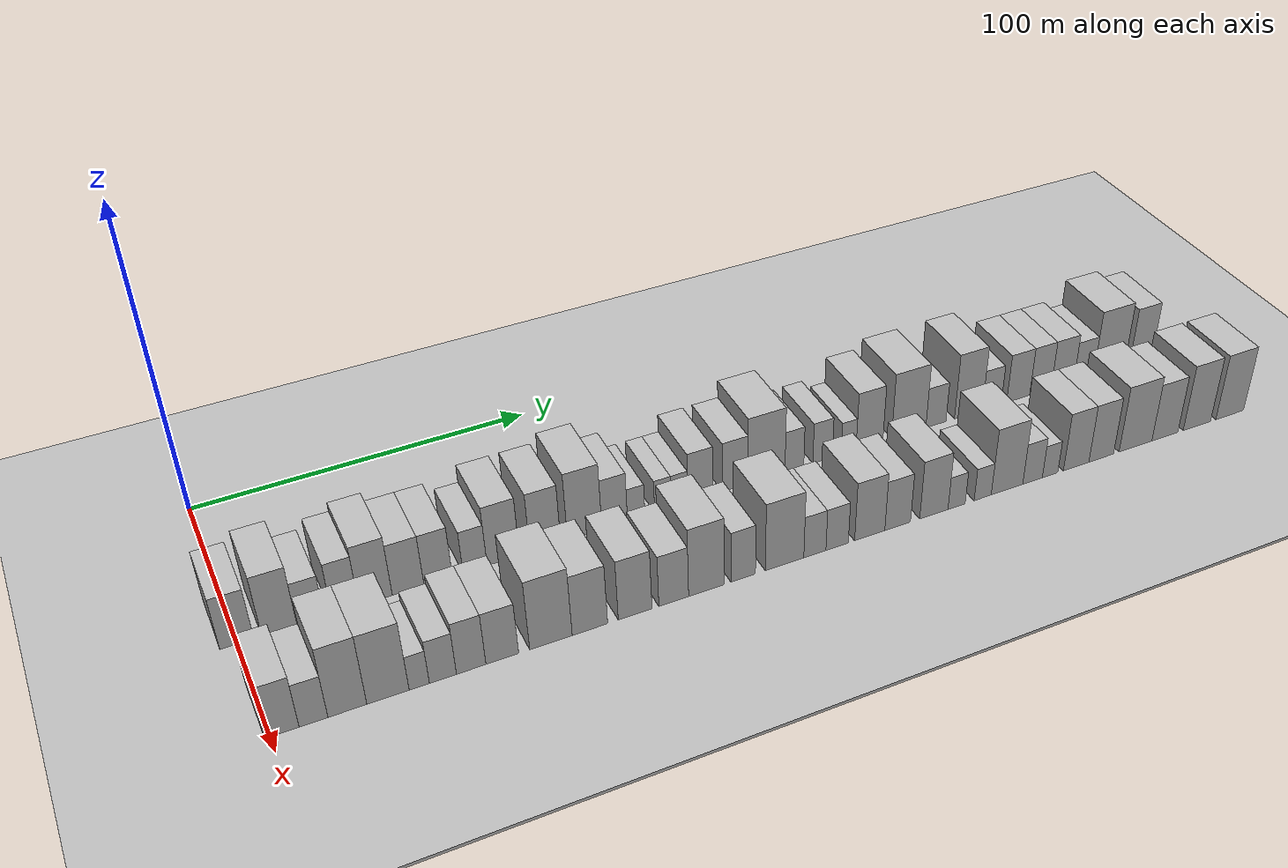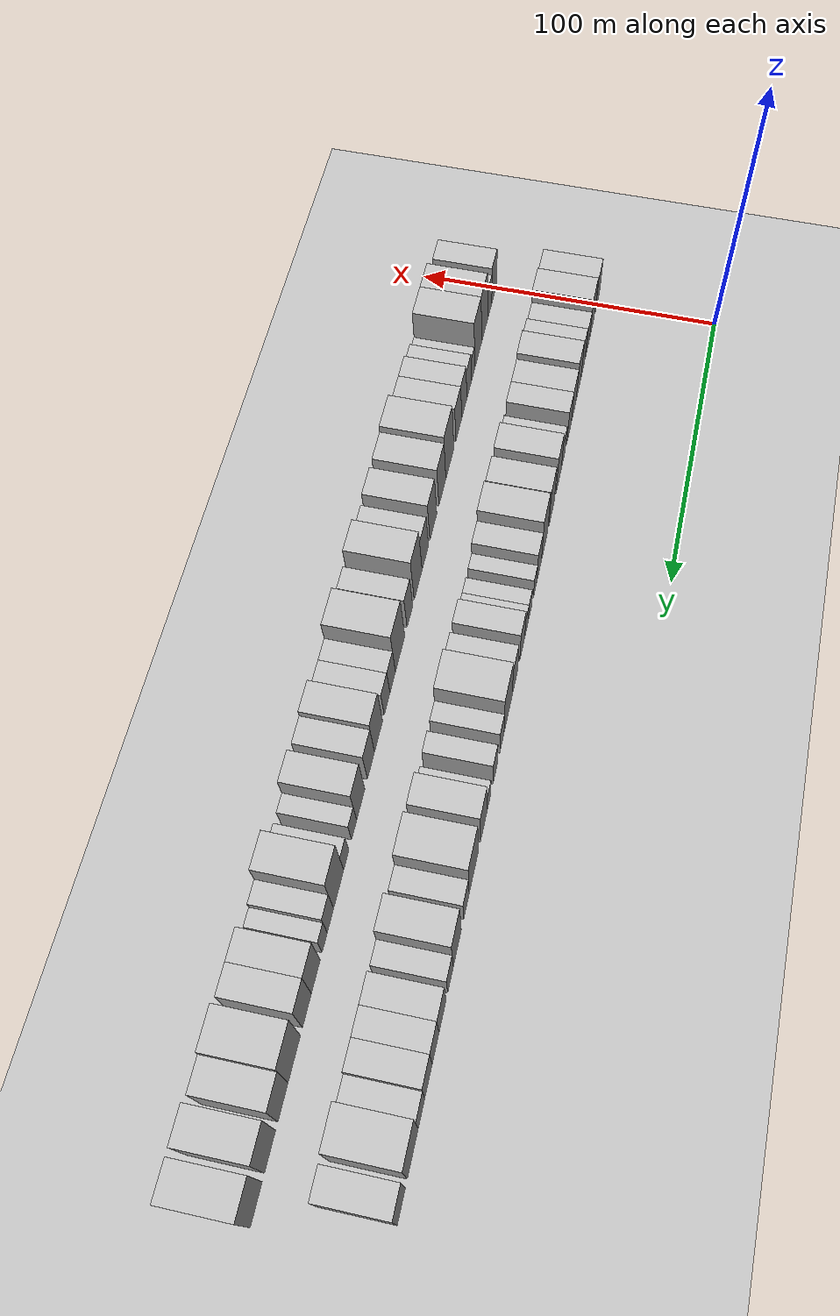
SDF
<sdf version="1.6">
 <world name="default">
  <include><name>ground_plane_1</name><uri>model://HANNAS_ground_plane</uri></include>
  <include>
   <name>ground_plane_2</name>
   <uri>model://HANNAS_ground_plane</uri>
   <pose>100 0 0  0 0 0</pose>
  </include>
  <model name="building_32">
   <static>1</static>
   <pose>50.0000 -0.1059 0 0.000000 0.000000 0.000000</pose>
   <link name="link">
    <pose>0 0 9.00 0 0 0</pose>
    <collision name="collision"><geometry><box><size>20.0000 8.8263 18.0000</size></box></geometry></collision>
    <visual name="visual">
     <cast_shadows>0</cast_shadows>
     <geometry><box><size>20.0000 8.8263 18.0000</size></box></geometry>
     <material>
      <script>
       <uri>model://HANNAS_wall/materials/scripts</uri>
       <uri>model://HANNAS_wall/materials/textures</uri>
       <name>vrc/HANNAS_wall</name>
      </script>
     </material>
    </visual>
   </link>
  </model>
  <model name="building_33">
   <static>1</static>
   <pose>50.0000 10.9382 0 0.000000 0.000000 0.000000</pose>
   <link name="link">
    <pose>0 0 10.50 0 0 0</pose>
    <collision name="collision"><geometry><box><size>20.0000 9.2619 21.0000</size></box></geometry></collision>
    <visual name="visual">
     <cast_shadows>0</cast_shadows>
     <geometry><box><size>20.0000 9.2619 21.0000</size></box></geometry>
     <material>
      <script>
       <uri>model://HANNAS_wall/materials/scripts</uri>
       <uri>model://HANNAS_wall/materials/textures</uri>
       <name>vrc/HANNAS_wall</name>
      </script>
     </material>
    </visual>
   </link>
  </model>
  <model name="building_34">
   <static>1</static>
   <pose>50.0000 19.1914 0 0.000000 0.000000 0.000000</pose>
   <link name="link">
    <pose>0 0 7.50 0 0 0</pose>
    <collision name="collision"><geometry><box><size>20.0000 7.2445 15.0000</size></box></geometry></collision>
    <visual name="visual">
     <cast_shadows>0</cast_shadows>
     <geometry><box><size>20.0000 7.2445 15.0000</size></box></geometry>
     <material>
      <script>
       <uri>model://HANNAS_wall/materials/scripts</uri>
       <uri>model://HANNAS_wall/materials/textures</uri>
       <name>vrc/HANNAS_wall</name>
      </script>
     </material>
    </visual>
   </link>
  </model>
  <model name="building_35">
   <static>1</static>
   <pose>50.0000 28.4466 0 0.000000 0.000000 0.000000</pose>
   <link name="link">
    <pose>0 0 9.00 0 0 0</pose>
    <collision name="collision"><geometry><box><size>20.0000 7.2659 18.0000</size></box></geometry></collision>
    <visual name="visual">
     <cast_shadows>0</cast_shadows>
     <geometry><box><size>20.0000 7.2659 18.0000</size></box></geometry>
     <material>
      <script>
       <uri>model://HANNAS_wall/materials/scripts</uri>
       <uri>model://HANNAS_wall/materials/textures</uri>
       <name>vrc/HANNAS_wall</name>
      </script>
     </material>
    </visual>
   </link>
  </model>
  <model name="building_36">
   <static>1</static>
   <pose>50.0000 36.6467 0 0.000000 0.000000 0.000000</pose>
   <link name="link">
    <pose>0 0 10.50 0 0 0</pose>
    <collision name="collision"><geometry><box><size>20.0000 9.1343 21.0000</size></box></geometry></collision>
    <visual name="visual">
     <cast_shadows>0</cast_shadows>
     <geometry><box><size>20.0000 9.1343 21.0000</size></box></geometry>
     <material>
      <script>
       <uri>model://HANNAS_wall/materials/scripts</uri>
       <uri>model://HANNAS_wall/materials/textures</uri>
       <name>vrc/HANNAS_wall</name>
      </script>
     </material>
    </visual>
   </link>
  </model>
  <model name="building_37">
   <static>1</static>
   <pose>50.0000 45.5861 0 0.000000 0.000000 0.000000</pose>
   <link name="link">
    <pose>0 0 9.00 0 0 0</pose>
    <collision name="collision"><geometry><box><size>20.0000 8.7445 18.0000</size></box></geometry></collision>
    <visual name="visual">
     <cast_shadows>0</cast_shadows>
     <geometry><box><size>20.0000 8.7445 18.0000</size></box></geometry>
     <material>
      <script>
       <uri>model://HANNAS_wall/materials/scripts</uri>
       <uri>model://HANNAS_wall/materials/textures</uri>
       <name>vrc/HANNAS_wall</name>
      </script>
     </material>
    </visual>
   </link>
  </model>
  <model name="building_38">
   <static>1</static>
   <pose>50.0000 53.9512 0 0.000000 0.000000 0.000000</pose>
   <link name="link">
    <pose>0 0 9.00 0 0 0</pose>
    <collision name="collision"><geometry><box><size>20.0000 7.9858 18.0000</size></box></geometry></collision>
    <visual name="visual">
     <cast_shadows>0</cast_shadows>
     <geometry><box><size>20.0000 7.9858 18.0000</size></box></geometry>
     <material>
      <script>
       <uri>model://HANNAS_wall/materials/scripts</uri>
       <uri>model://HANNAS_wall/materials/textures</uri>
       <name>vrc/HANNAS_wall</name>
      </script>
     </material>
    </visual>
   </link>
  </model>
  <model name="building_39">
   <static>1</static>
   <pose>50.0000 64.3658 0 0.000000 0.000000 0.000000</pose>
   <link name="link">
    <pose>0 0 7.50 0 0 0</pose>
    <collision name="collision"><geometry><box><size>20.0000 6.8434 15.0000</size></box></geometry></collision>
    <visual name="visual">
     <cast_shadows>0</cast_shadows>
     <geometry><box><size>20.0000 6.8434 15.0000</size></box></geometry>
     <material>
      <script>
       <uri>model://HANNAS_wall/materials/scripts</uri>
       <uri>model://HANNAS_wall/materials/textures</uri>
       <name>vrc/HANNAS_wall</name>
      </script>
     </material>
    </visual>
   </link>
  </model>
  <model name="building_40">
   <static>1</static>
   <pose>50.0000 72.4730 0 0.000000 0.000000 0.000000</pose>
   <link name="link">
    <pose>0 0 10.50 0 0 0</pose>
    <collision name="collision"><geometry><box><size>20.0000 9.3710 21.0000</size></box></geometry></collision>
    <visual name="visual">
     <cast_shadows>0</cast_shadows>
     <geometry><box><size>20.0000 9.3710 21.0000</size></box></geometry>
     <material>
      <script>
       <uri>model://HANNAS_wall/materials/scripts</uri>
       <uri>model://HANNAS_wall/materials/textures</uri>
       <name>vrc/HANNAS_wall</name>
      </script>
     </material>
    </visual>
   </link>
  </model>
  <model name="building_41">
   <static>1</static>
   <pose>50.0000 84.6724 0 0.000000 0.000000 0.000000</pose>
   <link name="link">
    <pose>0 0 10.50 0 0 0</pose>
    <collision name="collision"><geometry><box><size>20.0000 9.0277 21.0000</size></box></geometry></collision>
    <visual name="visual">
     <cast_shadows>0</cast_shadows>
     <geometry><box><size>20.0000 9.0277 21.0000</size></box></geometry>
     <material>
      <script>
       <uri>model://HANNAS_wall/materials/scripts</uri>
       <uri>model://HANNAS_wall/materials/textures</uri>
       <name>vrc/HANNAS_wall</name>
      </script>
     </material>
    </visual>
   </link>
  </model>
  <model name="building_42">
   <static>1</static>
   <pose>50.0000 96.3206 0 0.000000 0.000000 0.000000</pose>
   <link name="link">
    <pose>0 0 12.00 0 0 0</pose>
    <collision name="collision"><geometry><box><size>20.0000 10.2688 24.0000</size></box></geometry></collision>
    <visual name="visual">
     <cast_shadows>0</cast_shadows>
     <geometry><box><size>20.0000 10.2688 24.0000</size></box></geometry>
     <material>
      <script>
       <uri>model://HANNAS_wall/materials/scripts</uri>
       <uri>model://HANNAS_wall/materials/textures</uri>
       <name>vrc/HANNAS_wall</name>
      </script>
     </material>
    </visual>
   </link>
  </model>
  <model name="building_43">
   <static>1</static>
   <pose>50.0000 105.3355 0 0.000000 0.000000 0.000000</pose>
   <link name="link">
    <pose>0 0 9.00 0 0 0</pose>
    <collision name="collision"><geometry><box><size>20.0000 7.7611 18.0000</size></box></geometry></collision>
    <visual name="visual">
     <cast_shadows>0</cast_shadows>
     <geometry><box><size>20.0000 7.7611 18.0000</size></box></geometry>
     <material>
      <script>
       <uri>model://HANNAS_wall/materials/scripts</uri>
       <uri>model://HANNAS_wall/materials/textures</uri>
       <name>vrc/HANNAS_wall</name>
      </script>
     </material>
    </visual>
   </link>
  </model>
  <model name="building_44">
   <static>1</static>
   <pose>50.0000 111.8671 0 0.000000 0.000000 0.000000</pose>
   <link name="link">
    <pose>0 0 6.00 0 0 0</pose>
    <collision name="collision"><geometry><box><size>20.0000 5.3020 12.0000</size></box></geometry></collision>
    <visual name="visual">
     <cast_shadows>0</cast_shadows>
     <geometry><box><size>20.0000 5.3020 12.0000</size></box></geometry>
     <material>
      <script>
       <uri>model://HANNAS_wall/materials/scripts</uri>
       <uri>model://HANNAS_wall/materials/textures</uri>
       <name>vrc/HANNAS_wall</name>
      </script>
     </material>
    </visual>
   </link>
  </model>
  <model name="building_45">
   <static>1</static>
   <pose>50.0000 120.0955 0 0.000000 0.000000 0.000000</pose>
   <link name="link">
    <pose>0 0 6.00 0 0 0</pose>
    <collision name="collision"><geometry><box><size>20.0000 5.1548 12.0000</size></box></geometry></collision>
    <visual name="visual">
     <cast_shadows>0</cast_shadows>
     <geometry><box><size>20.0000 5.1548 12.0000</size></box></geometry>
     <material>
      <script>
       <uri>model://HANNAS_wall/materials/scripts</uri>
       <uri>model://HANNAS_wall/materials/textures</uri>
       <name>vrc/HANNAS_wall</name>
      </script>
     </material>
    </visual>
   </link>
  </model>
  <model name="building_46">
   <static>1</static>
   <pose>50.0000 125.2434 0 0.000000 0.000000 0.000000</pose>
   <link name="link">
    <pose>0 0 6.00 0 0 0</pose>
    <collision name="collision"><geometry><box><size>20.0000 5.1410 12.0000</size></box></geometry></collision>
    <visual name="visual">
     <cast_shadows>0</cast_shadows>
     <geometry><box><size>20.0000 5.1410 12.0000</size></box></geometry>
     <material>
      <script>
       <uri>model://HANNAS_wall/materials/scripts</uri>
       <uri>model://HANNAS_wall/materials/textures</uri>
       <name>vrc/HANNAS_wall</name>
      </script>
     </material>
    </visual>
   </link>
  </model>
  <model name="building_47">
   <static>1</static>
   <pose>50.0000 131.7427 0 0.000000 0.000000 0.000000</pose>
   <link name="link">
    <pose>0 0 9.00 0 0 0</pose>
    <collision name="collision"><geometry><box><size>20.0000 7.8575 18.0000</size></box></geometry></collision>
    <visual name="visual">
     <cast_shadows>0</cast_shadows>
     <geometry><box><size>20.0000 7.8575 18.0000</size></box></geometry>
     <material>
      <script>
       <uri>model://HANNAS_wall/materials/scripts</uri>
       <uri>model://HANNAS_wall/materials/textures</uri>
       <name>vrc/HANNAS_wall</name>
      </script>
     </material>
    </visual>
   </link>
  </model>
  <model name="building_48">
   <static>1</static>
   <pose>50.0000 142.7689 0 0.000000 0.000000 0.000000</pose>
   <link name="link">
    <pose>0 0 9.00 0 0 0</pose>
    <collision name="collision"><geometry><box><size>20.0000 8.1947 18.0000</size></box></geometry></collision>
    <visual name="visual">
     <cast_shadows>0</cast_shadows>
     <geometry><box><size>20.0000 8.1947 18.0000</size></box></geometry>
     <material>
      <script>
       <uri>model://HANNAS_wall/materials/scripts</uri>
       <uri>model://HANNAS_wall/materials/textures</uri>
       <name>vrc/HANNAS_wall</name>
      </script>
     </material>
    </visual>
   </link>
  </model>
  <model name="building_49">
   <static>1</static>
   <pose>50.0000 152.8509 0 0.000000 0.000000 0.000000</pose>
   <link name="link">
    <pose>0 0 12.00 0 0 0</pose>
    <collision name="collision"><geometry><box><size>20.0000 11.9694 24.0000</size></box></geometry></collision>
    <visual name="visual">
     <cast_shadows>0</cast_shadows>
     <geometry><box><size>20.0000 11.9694 24.0000</size></box></geometry>
     <material>
      <script>
       <uri>model://HANNAS_wall/materials/scripts</uri>
       <uri>model://HANNAS_wall/materials/textures</uri>
       <name>vrc/HANNAS_wall</name>
      </script>
     </material>
    </visual>
   </link>
  </model>
  <model name="building_50">
   <static>1</static>
   <pose>50.0000 161.9221 0 0.000000 0.000000 0.000000</pose>
   <link name="link">
    <pose>0 0 7.50 0 0 0</pose>
    <collision name="collision"><geometry><box><size>20.0000 6.1730 15.0000</size></box></geometry></collision>
    <visual name="visual">
     <cast_shadows>0</cast_shadows>
     <geometry><box><size>20.0000 6.1730 15.0000</size></box></geometry>
     <material>
      <script>
       <uri>model://HANNAS_wall/materials/scripts</uri>
       <uri>model://HANNAS_wall/materials/textures</uri>
       <name>vrc/HANNAS_wall</name>
      </script>
     </material>
    </visual>
   </link>
  </model>
  <model name="building_51">
   <static>1</static>
   <pose>50.0000 171.2372 0 0.000000 0.000000 0.000000</pose>
   <link name="link">
    <pose>0 0 7.50 0 0 0</pose>
    <collision name="collision"><geometry><box><size>20.0000 6.4571 15.0000</size></box></geometry></collision>
    <visual name="visual">
     <cast_shadows>0</cast_shadows>
     <geometry><box><size>20.0000 6.4571 15.0000</size></box></geometry>
     <material>
      <script>
       <uri>model://HANNAS_wall/materials/scripts</uri>
       <uri>model://HANNAS_wall/materials/textures</uri>
       <name>vrc/HANNAS_wall</name>
      </script>
     </material>
    </visual>
   </link>
  </model>
  <model name="building_52">
   <static>1</static>
   <pose>50.0000 179.9599 0 0.000000 0.000000 0.000000</pose>
   <link name="link">
    <pose>0 0 6.00 0 0 0</pose>
    <collision name="collision"><geometry><box><size>20.0000 4.9883 12.0000</size></box></geometry></collision>
    <visual name="visual">
     <cast_shadows>0</cast_shadows>
     <geometry><box><size>20.0000 4.9883 12.0000</size></box></geometry>
     <material>
      <script>
       <uri>model://HANNAS_wall/materials/scripts</uri>
       <uri>model://HANNAS_wall/materials/textures</uri>
       <name>vrc/HANNAS_wall</name>
      </script>
     </material>
    </visual>
   </link>
  </model>
  <model name="building_53">
   <static>1</static>
   <pose>50.0000 187.0198 0 0.000000 0.000000 0.000000</pose>
   <link name="link">
    <pose>0 0 10.50 0 0 0</pose>
    <collision name="collision"><geometry><box><size>20.0000 9.1315 21.0000</size></box></geometry></collision>
    <visual name="visual">
     <cast_shadows>0</cast_shadows>
     <geometry><box><size>20.0000 9.1315 21.0000</size></box></geometry>
     <material>
      <script>
       <uri>model://HANNAS_wall/materials/scripts</uri>
       <uri>model://HANNAS_wall/materials/textures</uri>
       <name>vrc/HANNAS_wall</name>
      </script>
     </material>
    </visual>
   </link>
  </model>
  <model name="building_54">
   <static>1</static>
   <pose>50.0000 200.5181 0 0.000000 0.000000 0.000000</pose>
   <link name="link">
    <pose>0 0 12.00 0 0 0</pose>
    <collision name="collision"><geometry><box><size>20.0000 11.8651 24.0000</size></box></geometry></collision>
    <visual name="visual">
     <cast_shadows>0</cast_shadows>
     <geometry><box><size>20.0000 11.8651 24.0000</size></box></geometry>
     <material>
      <script>
       <uri>model://HANNAS_wall/materials/scripts</uri>
       <uri>model://HANNAS_wall/materials/textures</uri>
       <name>vrc/HANNAS_wall</name>
      </script>
     </material>
    </visual>
   </link>
  </model>
  <model name="building_55">
   <static>1</static>
   <pose>50.0000 209.9860 0 0.000000 0.000000 0.000000</pose>
   <link name="link">
    <pose>0 0 7.50 0 0 0</pose>
    <collision name="collision"><geometry><box><size>20.0000 7.0707 15.0000</size></box></geometry></collision>
    <visual name="visual">
     <cast_shadows>0</cast_shadows>
     <geometry><box><size>20.0000 7.0707 15.0000</size></box></geometry>
     <material>
      <script>
       <uri>model://HANNAS_wall/materials/scripts</uri>
       <uri>model://HANNAS_wall/materials/textures</uri>
       <name>vrc/HANNAS_wall</name>
      </script>
     </material>
    </visual>
   </link>
  </model>
  <model name="building_56">
   <static>1</static>
   <pose>50.0000 221.4651 0 0.000000 0.000000 0.000000</pose>
   <link name="link">
    <pose>0 0 12.00 0 0 0</pose>
    <collision name="collision"><geometry><box><size>20.0000 9.8875 24.0000</size></box></geometry></collision>
    <visual name="visual">
     <cast_shadows>0</cast_shadows>
     <geometry><box><size>20.0000 9.8875 24.0000</size></box></geometry>
     <material>
      <script>
       <uri>model://HANNAS_wall/materials/scripts</uri>
       <uri>model://HANNAS_wall/materials/textures</uri>
       <name>vrc/HANNAS_wall</name>
      </script>
     </material>
    </visual>
   </link>
  </model>
  <model name="building_57">
   <static>1</static>
   <pose>50.0000 229.8270 0 0.000000 0.000000 0.000000</pose>
   <link name="link">
    <pose>0 0 7.50 0 0 0</pose>
    <collision name="collision"><geometry><box><size>20.0000 6.8363 15.0000</size></box></geometry></collision>
    <visual name="visual">
     <cast_shadows>0</cast_shadows>
     <geometry><box><size>20.0000 6.8363 15.0000</size></box></geometry>
     <material>
      <script>
       <uri>model://HANNAS_wall/materials/scripts</uri>
       <uri>model://HANNAS_wall/materials/textures</uri>
       <name>vrc/HANNAS_wall</name>
      </script>
     </material>
    </visual>
   </link>
  </model>
  <model name="building_58">
   <static>1</static>
   <pose>50.0000 239.4545 0 0.000000 0.000000 0.000000</pose>
   <link name="link">
    <pose>0 0 9.00 0 0 0</pose>
    <collision name="collision"><geometry><box><size>20.0000 8.4186 18.0000</size></box></geometry></collision>
    <visual name="visual">
     <cast_shadows>0</cast_shadows>
     <geometry><box><size>20.0000 8.4186 18.0000</size></box></geometry>
     <material>
      <script>
       <uri>model://HANNAS_wall/materials/scripts</uri>
       <uri>model://HANNAS_wall/materials/textures</uri>
       <name>vrc/HANNAS_wall</name>
      </script>
     </material>
    </visual>
   </link>
  </model>
  <model name="building_59">
   <static>1</static>
   <pose>50.0000 247.6351 0 0.000000 0.000000 0.000000</pose>
   <link name="link">
    <pose>0 0 9.00 0 0 0</pose>
    <collision name="collision"><geometry><box><size>20.0000 7.9426 18.0000</size></box></geometry></collision>
    <visual name="visual">
     <cast_shadows>0</cast_shadows>
     <geometry><box><size>20.0000 7.9426 18.0000</size></box></geometry>
     <material>
      <script>
       <uri>model://HANNAS_wall/materials/scripts</uri>
       <uri>model://HANNAS_wall/materials/textures</uri>
       <name>vrc/HANNAS_wall</name>
      </script>
     </material>
    </visual>
   </link>
  </model>
  <model name="building_60">
   <static>1</static>
   <pose>50.0000 255.8206 0 0.000000 0.000000 0.000000</pose>
   <link name="link">
    <pose>0 0 9.00 0 0 0</pose>
    <collision name="collision"><geometry><box><size>20.0000 8.4284 18.0000</size></box></geometry></collision>
    <visual name="visual">
     <cast_shadows>0</cast_shadows>
     <geometry><box><size>20.0000 8.4284 18.0000</size></box></geometry>
     <material>
      <script>
       <uri>model://HANNAS_wall/materials/scripts</uri>
       <uri>model://HANNAS_wall/materials/textures</uri>
       <name>vrc/HANNAS_wall</name>
      </script>
     </material>
    </visual>
   </link>
  </model>
  <model name="building_61">
   <static>1</static>
   <pose>50.0000 263.7699 0 0.000000 0.000000 0.000000</pose>
   <link name="link">
    <pose>0 0 7.50 0 0 0</pose>
    <collision name="collision"><geometry><box><size>20.0000 7.4702 15.0000</size></box></geometry></collision>
    <visual name="visual">
     <cast_shadows>0</cast_shadows>
     <geometry><box><size>20.0000 7.4702 15.0000</size></box></geometry>
     <material>
      <script>
       <uri>model://HANNAS_wall/materials/scripts</uri>
       <uri>model://HANNAS_wall/materials/textures</uri>
       <name>vrc/HANNAS_wall</name>
      </script>
     </material>
    </visual>
   </link>
  </model>
  <model name="building_62">
   <static>1</static>
   <pose>50.0000 273.4328 0 0.000000 0.000000 0.000000</pose>
   <link name="link">
    <pose>0 0 12.00 0 0 0</pose>
    <collision name="collision"><geometry><box><size>20.0000 11.8557 24.0000</size></box></geometry></collision>
    <visual name="visual">
     <cast_shadows>0</cast_shadows>
     <geometry><box><size>20.0000 11.8557 24.0000</size></box></geometry>
     <material>
      <script>
       <uri>model://HANNAS_wall/materials/scripts</uri>
       <uri>model://HANNAS_wall/materials/textures</uri>
       <name>vrc/HANNAS_wall</name>
      </script>
     </material>
    </visual>
   </link>
  </model>
  <model name="building_63">
   <static>1</static>
   <pose>50.0000 285.7051 0 0.000000 0.000000 0.000000</pose>
   <link name="link">
    <pose>0 0 10.50 0 0 0</pose>
    <collision name="collision"><geometry><box><size>20.0000 8.6888 21.0000</size></box></geometry></collision>
    <visual name="visual">
     <cast_shadows>0</cast_shadows>
     <geometry><box><size>20.0000 8.6888 21.0000</size></box></geometry>
     <material>
      <script>
       <uri>model://HANNAS_wall/materials/scripts</uri>
       <uri>model://HANNAS_wall/materials/textures</uri>
       <name>vrc/HANNAS_wall</name>
      </script>
     </material>
    </visual>
   </link>
  </model>
  <model name="building_96">
   <static>1</static>
   <pose>85.0000 2.8627 0 0.000000 0.000000 0.000000</pose>
   <link name="link">
    <pose>0 0 9.00 0 0 0</pose>
    <collision name="collision"><geometry><box><size>20.0000 8.4858 18.0000</size></box></geometry></collision>
    <visual name="visual">
     <cast_shadows>0</cast_shadows>
     <geometry><box><size>20.0000 8.4858 18.0000</size></box></geometry>
     <material>
      <script>
       <uri>model://HANNAS_wall/materials/scripts</uri>
       <uri>model://HANNAS_wall/materials/textures</uri>
       <name>vrc/HANNAS_wall</name>
      </script>
     </material>
    </visual>
   </link>
  </model>
  <model name="building_97">
   <static>1</static>
   <pose>85.0000 10.6916 0 0.000000 0.000000 0.000000</pose>
   <link name="link">
    <pose>0 0 7.50 0 0 0</pose>
    <collision name="collision"><geometry><box><size>20.0000 7.1720 15.0000</size></box></geometry></collision>
    <visual name="visual">
     <cast_shadows>0</cast_shadows>
     <geometry><box><size>20.0000 7.1720 15.0000</size></box></geometry>
     <material>
      <script>
       <uri>model://HANNAS_wall/materials/scripts</uri>
       <uri>model://HANNAS_wall/materials/textures</uri>
       <name>vrc/HANNAS_wall</name>
      </script>
     </material>
    </visual>
   </link>
  </model>
  <model name="building_98">
   <static>1</static>
   <pose>85.0000 19.1859 0 0.000000 0.000000 0.000000</pose>
   <link name="link">
    <pose>0 0 12.00 0 0 0</pose>
    <collision name="collision"><geometry><box><size>20.0000 9.8165 24.0000</size></box></geometry></collision>
    <visual name="visual">
     <cast_shadows>0</cast_shadows>
     <geometry><box><size>20.0000 9.8165 24.0000</size></box></geometry>
     <material>
      <script>
       <uri>model://HANNAS_wall/materials/scripts</uri>
       <uri>model://HANNAS_wall/materials/textures</uri>
       <name>vrc/HANNAS_wall</name>
      </script>
     </material>
    </visual>
   </link>
  </model>
  <model name="building_99">
   <static>1</static>
   <pose>85.0000 29.5244 0 0.000000 0.000000 0.000000</pose>
   <link name="link">
    <pose>0 0 12.00 0 0 0</pose>
    <collision name="collision"><geometry><box><size>20.0000 10.8606 24.0000</size></box></geometry></collision>
    <visual name="visual">
     <cast_shadows>0</cast_shadows>
     <geometry><box><size>20.0000 10.8606 24.0000</size></box></geometry>
     <material>
      <script>
       <uri>model://HANNAS_wall/materials/scripts</uri>
       <uri>model://HANNAS_wall/materials/textures</uri>
       <name>vrc/HANNAS_wall</name>
      </script>
     </material>
    </visual>
   </link>
  </model>
  <model name="building_100">
   <static>1</static>
   <pose>85.0000 37.5834 0 0.000000 0.000000 0.000000</pose>
   <link name="link">
    <pose>0 0 6.00 0 0 0</pose>
    <collision name="collision"><geometry><box><size>20.0000 5.2576 12.0000</size></box></geometry></collision>
    <visual name="visual">
     <cast_shadows>0</cast_shadows>
     <geometry><box><size>20.0000 5.2576 12.0000</size></box></geometry>
     <material>
      <script>
       <uri>model://HANNAS_wall/materials/scripts</uri>
       <uri>model://HANNAS_wall/materials/textures</uri>
       <name>vrc/HANNAS_wall</name>
      </script>
     </material>
    </visual>
   </link>
  </model>
  <model name="building_101">
   <static>1</static>
   <pose>85.0000 43.7744 0 0.000000 0.000000 0.000000</pose>
   <link name="link">
    <pose>0 0 7.50 0 0 0</pose>
    <collision name="collision"><geometry><box><size>20.0000 7.1243 15.0000</size></box></geometry></collision>
    <visual name="visual">
     <cast_shadows>0</cast_shadows>
     <geometry><box><size>20.0000 7.1243 15.0000</size></box></geometry>
     <material>
      <script>
       <uri>model://HANNAS_wall/materials/scripts</uri>
       <uri>model://HANNAS_wall/materials/textures</uri>
       <name>vrc/HANNAS_wall</name>
      </script>
     </material>
    </visual>
   </link>
  </model>
  <model name="building_102">
   <static>1</static>
   <pose>85.0000 51.2470 0 0.000000 0.000000 0.000000</pose>
   <link name="link">
    <pose>0 0 9.00 0 0 0</pose>
    <collision name="collision"><geometry><box><size>20.0000 7.8208 18.0000</size></box></geometry></collision>
    <visual name="visual">
     <cast_shadows>0</cast_shadows>
     <geometry><box><size>20.0000 7.8208 18.0000</size></box></geometry>
     <material>
      <script>
       <uri>model://HANNAS_wall/materials/scripts</uri>
       <uri>model://HANNAS_wall/materials/textures</uri>
       <name>vrc/HANNAS_wall</name>
      </script>
     </material>
    </visual>
   </link>
  </model>
  <model name="building_103">
   <static>1</static>
   <pose>85.0000 59.5726 0 0.000000 0.000000 0.000000</pose>
   <link name="link">
    <pose>0 0 9.00 0 0 0</pose>
    <collision name="collision"><geometry><box><size>20.0000 8.8305 18.0000</size></box></geometry></collision>
    <visual name="visual">
     <cast_shadows>0</cast_shadows>
     <geometry><box><size>20.0000 8.8305 18.0000</size></box></geometry>
     <material>
      <script>
       <uri>model://HANNAS_wall/materials/scripts</uri>
       <uri>model://HANNAS_wall/materials/textures</uri>
       <name>vrc/HANNAS_wall</name>
      </script>
     </material>
    </visual>
   </link>
  </model>
  <model name="building_104">
   <static>1</static>
   <pose>85.0000 72.8417 0 0.000000 0.000000 0.000000</pose>
   <link name="link">
    <pose>0 0 12.00 0 0 0</pose>
    <collision name="collision"><geometry><box><size>20.0000 11.7076 24.0000</size></box></geometry></collision>
    <visual name="visual">
     <cast_shadows>0</cast_shadows>
     <geometry><box><size>20.0000 11.7076 24.0000</size></box></geometry>
     <material>
      <script>
       <uri>model://HANNAS_wall/materials/scripts</uri>
       <uri>model://HANNAS_wall/materials/textures</uri>
       <name>vrc/HANNAS_wall</name>
      </script>
     </material>
    </visual>
   </link>
  </model>
  <model name="building_105">
   <static>1</static>
   <pose>85.0000 83.6603 0 0.000000 0.000000 0.000000</pose>
   <link name="link">
    <pose>0 0 10.50 0 0 0</pose>
    <collision name="collision"><geometry><box><size>20.0000 9.9297 21.0000</size></box></geometry></collision>
    <visual name="visual">
     <cast_shadows>0</cast_shadows>
     <geometry><box><size>20.0000 9.9297 21.0000</size></box></geometry>
     <material>
      <script>
       <uri>model://HANNAS_wall/materials/scripts</uri>
       <uri>model://HANNAS_wall/materials/textures</uri>
       <name>vrc/HANNAS_wall</name>
      </script>
     </material>
    </visual>
   </link>
  </model>
  <model name="building_106">
   <static>1</static>
   <pose>85.0000 96.4354 0 0.000000 0.000000 0.000000</pose>
   <link name="link">
    <pose>0 0 10.50 0 0 0</pose>
    <collision name="collision"><geometry><box><size>20.0000 9.6205 21.0000</size></box></geometry></collision>
    <visual name="visual">
     <cast_shadows>0</cast_shadows>
     <geometry><box><size>20.0000 9.6205 21.0000</size></box></geometry>
     <material>
      <script>
       <uri>model://HANNAS_wall/materials/scripts</uri>
       <uri>model://HANNAS_wall/materials/textures</uri>
       <name>vrc/HANNAS_wall</name>
      </script>
     </material>
    </visual>
   </link>
  </model>
  <model name="building_107">
   <static>1</static>
   <pose>85.0000 107.5738 0 0.000000 0.000000 0.000000</pose>
   <link name="link">
    <pose>0 0 9.00 0 0 0</pose>
    <collision name="collision"><geometry><box><size>20.0000 8.6563 18.0000</size></box></geometry></collision>
    <visual name="visual">
     <cast_shadows>0</cast_shadows>
     <geometry><box><size>20.0000 8.6563 18.0000</size></box></geometry>
     <material>
      <script>
       <uri>model://HANNAS_wall/materials/scripts</uri>
       <uri>model://HANNAS_wall/materials/textures</uri>
       <name>vrc/HANNAS_wall</name>
      </script>
     </material>
    </visual>
   </link>
  </model>
  <model name="building_108">
   <static>1</static>
   <pose>85.0000 117.1630 0 0.000000 0.000000 0.000000</pose>
   <link name="link">
    <pose>0 0 12.00 0 0 0</pose>
    <collision name="collision"><geometry><box><size>20.0000 10.5221 24.0000</size></box></geometry></collision>
    <visual name="visual">
     <cast_shadows>0</cast_shadows>
     <geometry><box><size>20.0000 10.5221 24.0000</size></box></geometry>
     <material>
      <script>
       <uri>model://HANNAS_wall/materials/scripts</uri>
       <uri>model://HANNAS_wall/materials/textures</uri>
       <name>vrc/HANNAS_wall</name>
      </script>
     </material>
    </visual>
   </link>
  </model>
  <model name="building_109">
   <static>1</static>
   <pose>85.0000 128.0937 0 0.000000 0.000000 0.000000</pose>
   <link name="link">
    <pose>0 0 9.00 0 0 0</pose>
    <collision name="collision"><geometry><box><size>20.0000 7.3392 18.0000</size></box></geometry></collision>
    <visual name="visual">
     <cast_shadows>0</cast_shadows>
     <geometry><box><size>20.0000 7.3392 18.0000</size></box></geometry>
     <material>
      <script>
       <uri>model://HANNAS_wall/materials/scripts</uri>
       <uri>model://HANNAS_wall/materials/textures</uri>
       <name>vrc/HANNAS_wall</name>
      </script>
     </material>
    </visual>
   </link>
  </model>
  <model name="building_110">
   <static>1</static>
   <pose>85.0000 140.6455 0 0.000000 0.000000 0.000000</pose>
   <link name="link">
    <pose>0 0 12.00 0 0 0</pose>
    <collision name="collision"><geometry><box><size>20.0000 11.7644 24.0000</size></box></geometry></collision>
    <visual name="visual">
     <cast_shadows>0</cast_shadows>
     <geometry><box><size>20.0000 11.7644 24.0000</size></box></geometry>
     <material>
      <script>
       <uri>model://HANNAS_wall/materials/scripts</uri>
       <uri>model://HANNAS_wall/materials/textures</uri>
       <name>vrc/HANNAS_wall</name>
      </script>
     </material>
    </visual>
   </link>
  </model>
  <model name="building_111">
   <static>1</static>
   <pose>85.0000 149.9603 0 0.000000 0.000000 0.000000</pose>
   <link name="link">
    <pose>0 0 7.50 0 0 0</pose>
    <collision name="collision"><geometry><box><size>20.0000 6.8652 15.0000</size></box></geometry></collision>
    <visual name="visual">
     <cast_shadows>0</cast_shadows>
     <geometry><box><size>20.0000 6.8652 15.0000</size></box></geometry>
     <material>
      <script>
       <uri>model://HANNAS_wall/materials/scripts</uri>
       <uri>model://HANNAS_wall/materials/textures</uri>
       <name>vrc/HANNAS_wall</name>
      </script>
     </material>
    </visual>
   </link>
  </model>
  <model name="building_112">
   <static>1</static>
   <pose>85.0000 156.9005 0 0.000000 0.000000 0.000000</pose>
   <link name="link">
    <pose>0 0 7.50 0 0 0</pose>
    <collision name="collision"><geometry><box><size>20.0000 7.0152 15.0000</size></box></geometry></collision>
    <visual name="visual">
     <cast_shadows>0</cast_shadows>
     <geometry><box><size>20.0000 7.0152 15.0000</size></box></geometry>
     <material>
      <script>
       <uri>model://HANNAS_wall/materials/scripts</uri>
       <uri>model://HANNAS_wall/materials/textures</uri>
       <name>vrc/HANNAS_wall</name>
      </script>
     </material>
    </visual>
   </link>
  </model>
  <model name="building_113">
   <static>1</static>
   <pose>85.0000 167.2164 0 0.000000 0.000000 0.000000</pose>
   <link name="link">
    <pose>0 0 10.50 0 0 0</pose>
    <collision name="collision"><geometry><box><size>20.0000 9.6166 21.0000</size></box></geometry></collision>
    <visual name="visual">
     <cast_shadows>0</cast_shadows>
     <geometry><box><size>20.0000 9.6166 21.0000</size></box></geometry>
     <material>
      <script>
       <uri>model://HANNAS_wall/materials/scripts</uri>
       <uri>model://HANNAS_wall/materials/textures</uri>
       <name>vrc/HANNAS_wall</name>
      </script>
     </material>
    </visual>
   </link>
  </model>
  <model name="building_114">
   <static>1</static>
   <pose>85.0000 176.1676 0 0.000000 0.000000 0.000000</pose>
   <link name="link">
    <pose>0 0 9.00 0 0 0</pose>
    <collision name="collision"><geometry><box><size>20.0000 8.2857 18.0000</size></box></geometry></collision>
    <visual name="visual">
     <cast_shadows>0</cast_shadows>
     <geometry><box><size>20.0000 8.2857 18.0000</size></box></geometry>
     <material>
      <script>
       <uri>model://HANNAS_wall/materials/scripts</uri>
       <uri>model://HANNAS_wall/materials/textures</uri>
       <name>vrc/HANNAS_wall</name>
      </script>
     </material>
    </visual>
   </link>
  </model>
  <model name="building_115">
   <static>1</static>
   <pose>85.0000 187.9529 0 0.000000 0.000000 0.000000</pose>
   <link name="link">
    <pose>0 0 10.50 0 0 0</pose>
    <collision name="collision"><geometry><box><size>20.0000 9.2848 21.0000</size></box></geometry></collision>
    <visual name="visual">
     <cast_shadows>0</cast_shadows>
     <geometry><box><size>20.0000 9.2848 21.0000</size></box></geometry>
     <material>
      <script>
       <uri>model://HANNAS_wall/materials/scripts</uri>
       <uri>model://HANNAS_wall/materials/textures</uri>
       <name>vrc/HANNAS_wall</name>
      </script>
     </material>
    </visual>
   </link>
  </model>
  <model name="building_116">
   <static>1</static>
   <pose>85.0000 195.4492 0 0.000000 0.000000 0.000000</pose>
   <link name="link">
    <pose>0 0 6.00 0 0 0</pose>
    <collision name="collision"><geometry><box><size>20.0000 5.7078 12.0000</size></box></geometry></collision>
    <visual name="visual">
     <cast_shadows>0</cast_shadows>
     <geometry><box><size>20.0000 5.7078 12.0000</size></box></geometry>
     <material>
      <script>
       <uri>model://HANNAS_wall/materials/scripts</uri>
       <uri>model://HANNAS_wall/materials/textures</uri>
       <name>vrc/HANNAS_wall</name>
      </script>
     </material>
    </visual>
   </link>
  </model>
  <model name="building_117">
   <static>1</static>
   <pose>85.0000 204.1736 0 0.000000 0.000000 0.000000</pose>
   <link name="link">
    <pose>0 0 6.00 0 0 0</pose>
    <collision name="collision"><geometry><box><size>20.0000 5.7411 12.0000</size></box></geometry></collision>
    <visual name="visual">
     <cast_shadows>0</cast_shadows>
     <geometry><box><size>20.0000 5.7411 12.0000</size></box></geometry>
     <material>
      <script>
       <uri>model://HANNAS_wall/materials/scripts</uri>
       <uri>model://HANNAS_wall/materials/textures</uri>
       <name>vrc/HANNAS_wall</name>
      </script>
     </material>
    </visual>
   </link>
  </model>
  <model name="building_118">
   <static>1</static>
   <pose>85.0000 212.4095 0 0.000000 0.000000 0.000000</pose>
   <link name="link">
    <pose>0 0 12.00 0 0 0</pose>
    <collision name="collision"><geometry><box><size>20.0000 10.7307 24.0000</size></box></geometry></collision>
    <visual name="visual">
     <cast_shadows>0</cast_shadows>
     <geometry><box><size>20.0000 10.7307 24.0000</size></box></geometry>
     <material>
      <script>
       <uri>model://HANNAS_wall/materials/scripts</uri>
       <uri>model://HANNAS_wall/materials/textures</uri>
       <name>vrc/HANNAS_wall</name>
      </script>
     </material>
    </visual>
   </link>
  </model>
  <model name="building_119">
   <static>1</static>
   <pose>85.0000 221.1549 0 0.000000 0.000000 0.000000</pose>
   <link name="link">
    <pose>0 0 7.50 0 0 0</pose>
    <collision name="collision"><geometry><box><size>20.0000 6.7600 15.0000</size></box></geometry></collision>
    <visual name="visual">
     <cast_shadows>0</cast_shadows>
     <geometry><box><size>20.0000 6.7600 15.0000</size></box></geometry>
     <material>
      <script>
       <uri>model://HANNAS_wall/materials/scripts</uri>
       <uri>model://HANNAS_wall/materials/textures</uri>
       <name>vrc/HANNAS_wall</name>
      </script>
     </material>
    </visual>
   </link>
  </model>
  <model name="building_120">
   <static>1</static>
   <pose>85.0000 227.2098 0 0.000000 0.000000 0.000000</pose>
   <link name="link">
    <pose>0 0 6.00 0 0 0</pose>
    <collision name="collision"><geometry><box><size>20.0000 5.3500 12.0000</size></box></geometry></collision>
    <visual name="visual">
     <cast_shadows>0</cast_shadows>
     <geometry><box><size>20.0000 5.3500 12.0000</size></box></geometry>
     <material>
      <script>
       <uri>model://HANNAS_wall/materials/scripts</uri>
       <uri>model://HANNAS_wall/materials/textures</uri>
       <name>vrc/HANNAS_wall</name>
      </script>
     </material>
    </visual>
   </link>
  </model>
  <model name="building_121">
   <static>1</static>
   <pose>85.0000 236.3554 0 0.000000 0.000000 0.000000</pose>
   <link name="link">
    <pose>0 0 10.50 0 0 0</pose>
    <collision name="collision"><geometry><box><size>20.0000 8.9411 21.0000</size></box></geometry></collision>
    <visual name="visual">
     <cast_shadows>0</cast_shadows>
     <geometry><box><size>20.0000 8.9411 21.0000</size></box></geometry>
     <material>
      <script>
       <uri>model://HANNAS_wall/materials/scripts</uri>
       <uri>model://HANNAS_wall/materials/textures</uri>
       <name>vrc/HANNAS_wall</name>
      </script>
     </material>
    </visual>
   </link>
  </model>
  <model name="building_122">
   <static>1</static>
   <pose>85.0000 245.2283 0 0.000000 0.000000 0.000000</pose>
   <link name="link">
    <pose>0 0 10.50 0 0 0</pose>
    <collision name="collision"><geometry><box><size>20.0000 8.8048 21.0000</size></box></geometry></collision>
    <visual name="visual">
     <cast_shadows>0</cast_shadows>
     <geometry><box><size>20.0000 8.8048 21.0000</size></box></geometry>
     <material>
      <script>
       <uri>model://HANNAS_wall/materials/scripts</uri>
       <uri>model://HANNAS_wall/materials/textures</uri>
       <name>vrc/HANNAS_wall</name>
      </script>
     </material>
    </visual>
   </link>
  </model>
  <model name="building_123">
   <static>1</static>
   <pose>85.0000 257.5753 0 0.000000 0.000000 0.000000</pose>
   <link name="link">
    <pose>0 0 12.00 0 0 0</pose>
    <collision name="collision"><geometry><box><size>20.0000 11.8892 24.0000</size></box></geometry></collision>
    <visual name="visual">
     <cast_shadows>0</cast_shadows>
     <geometry><box><size>20.0000 11.8892 24.0000</size></box></geometry>
     <material>
      <script>
       <uri>model://HANNAS_wall/materials/scripts</uri>
       <uri>model://HANNAS_wall/materials/textures</uri>
       <name>vrc/HANNAS_wall</name>
      </script>
     </material>
    </visual>
   </link>
  </model>
  <model name="building_124">
   <static>1</static>
   <pose>85.0000 268.3009 0 0.000000 0.000000 0.000000</pose>
   <link name="link">
    <pose>0 0 10.50 0 0 0</pose>
    <collision name="collision"><geometry><box><size>20.0000 9.5619 21.0000</size></box></geometry></collision>
    <visual name="visual">
     <cast_shadows>0</cast_shadows>
     <geometry><box><size>20.0000 9.5619 21.0000</size></box></geometry>
     <material>
      <script>
       <uri>model://HANNAS_wall/materials/scripts</uri>
       <uri>model://HANNAS_wall/materials/textures</uri>
       <name>vrc/HANNAS_wall</name>
      </script>
     </material>
    </visual>
   </link>
  </model>
  <model name="building_125">
   <static>1</static>
   <pose>85.0000 280.1923 0 0.000000 0.000000 0.000000</pose>
   <link name="link">
    <pose>0 0 12.00 0 0 0</pose>
    <collision name="collision"><geometry><box><size>20.0000 10.2208 24.0000</size></box></geometry></collision>
    <visual name="visual">
     <cast_shadows>0</cast_shadows>
     <geometry><box><size>20.0000 10.2208 24.0000</size></box></geometry>
     <material>
      <script>
       <uri>model://HANNAS_wall/materials/scripts</uri>
       <uri>model://HANNAS_wall/materials/textures</uri>
       <name>vrc/HANNAS_wall</name>
      </script>
     </material>
    </visual>
   </link>
  </model>
  <model name="building_126">
   <static>1</static>
   <pose>85.0000 292.5855 0 0.000000 0.000000 0.000000</pose>
   <link name="link">
    <pose>0 0 12.00 0 0 0</pose>
    <collision name="collision"><geometry><box><size>20.0000 10.5657 24.0000</size></box></geometry></collision>
    <visual name="visual">
     <cast_shadows>0</cast_shadows>
     <geometry><box><size>20.0000 10.5657 24.0000</size></box></geometry>
     <material>
      <script>
       <uri>model://HANNAS_wall/materials/scripts</uri>
       <uri>model://HANNAS_wall/materials/textures</uri>
       <name>vrc/HANNAS_wall</name>
      </script>
     </material>
    </visual>
   </link>
  </model>
 </world>
</sdf>
